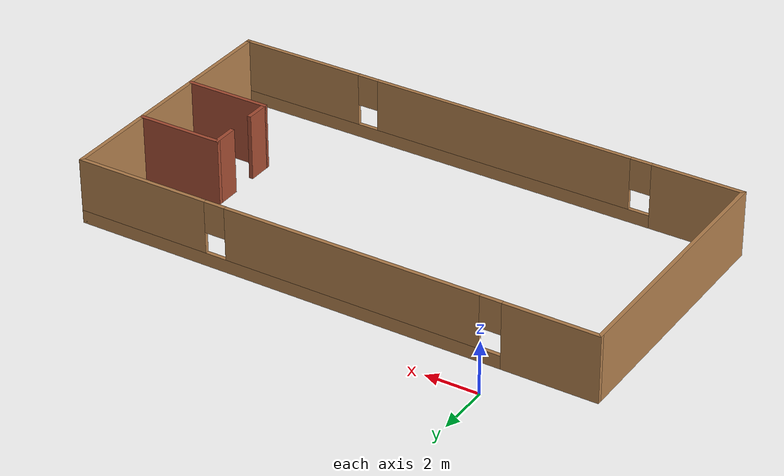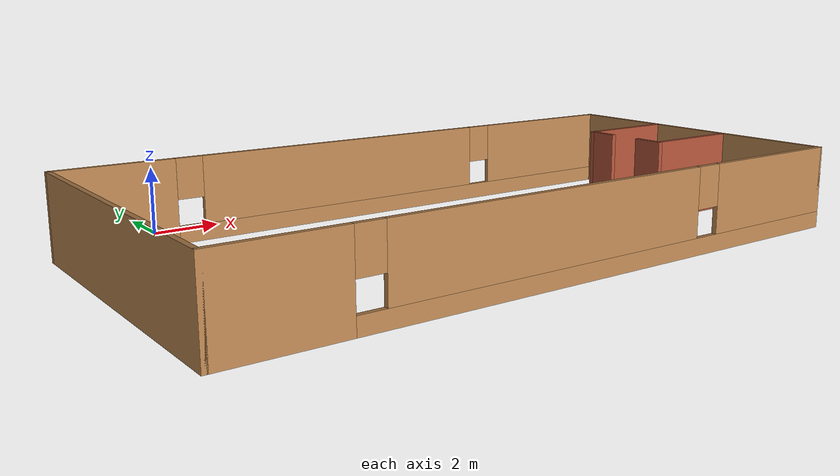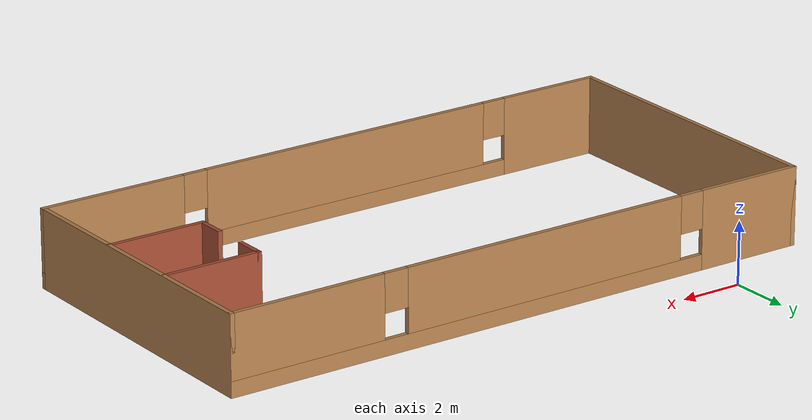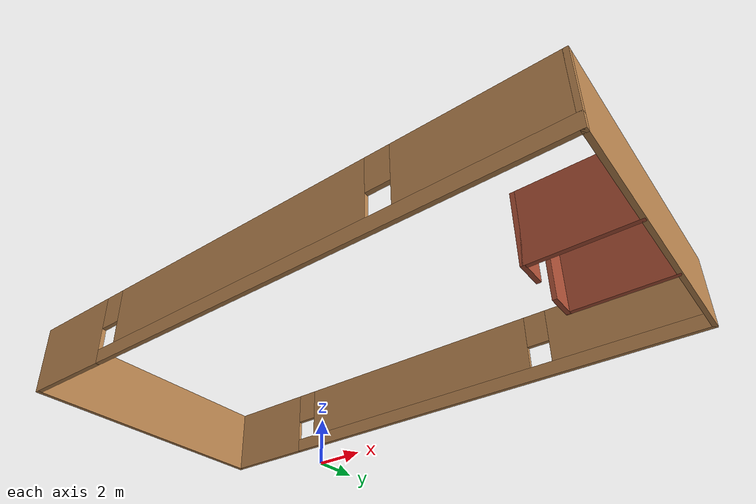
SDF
<?xml version='1.0'?>
<sdf version='1.7'>
  <model name='TestWorld'>
    <pose>6.615 -5.7575 0 0 -0 0</pose>
    <link name='Wall_0'>
      <collision name='Wall_0_Collision'>
        <geometry>
          <box>
            <size>10 0.15 2.5</size>
          </box>
        </geometry>
        <pose>0 0 1.25 0 -0 0</pose>
      </collision>
      <visual name='Wall_0_Visual'>
        <pose>0 0 1.25 0 -0 0</pose>
        <geometry>
          <box>
            <size>10 0.15 2.5</size>
          </box>
        </geometry>
        <material>
          <script>
            <uri>file://media/materials/scripts/gazebo.material</uri>
            <name>Gazebo/Wood</name>
          </script>
          <ambient>0.45098 0.823529 0.0862745 1</ambient>
        </material>
        <meta>
          <layer>0</layer>
        </meta>
      </visual>
      <pose>-9.925 -0.7575 0 0 -0 -1.5708</pose>
    </link>
    <link name='Wall_10'>
      <collision name='Wall_10_Collision'>
        <geometry>
          <box>
            <size>1 0.15 2.5</size>
          </box>
        </geometry>
        <pose>0 0 1.25 0 -0 0</pose>
      </collision>
      <visual name='Wall_10_Visual'>
        <pose>0 0 1.25 0 -0 0</pose>
        <geometry>
          <box>
            <size>1 0.15 2.5</size>
          </box>
        </geometry>
        <material>
          <script>
            <uri>file://media/materials/scripts/gazebo.material</uri>
            <name>Gazebo/Bricks</name>
          </script>
          <ambient>1 1 1 1</ambient>
        </material>
        <meta>
          <layer>0</layer>
        </meta>
      </visual>
      <pose>6.78158 0.344769 0 0 -0 -1.5708</pose>
    </link>
    <link name='Wall_13'>
      <collision name='Wall_13_Collision'>
        <geometry>
          <box>
            <size>1 0.15 2.5</size>
          </box>
        </geometry>
        <pose>0 0 1.25 0 -0 0</pose>
      </collision>
      <visual name='Wall_13_Visual'>
        <pose>0 0 1.25 0 -0 0</pose>
        <geometry>
          <box>
            <size>1 0.15 2.5</size>
          </box>
        </geometry>
        <material>
          <script>
            <uri>file://media/materials/scripts/gazebo.material</uri>
            <name>Gazebo/Bricks</name>
          </script>
          <ambient>1 1 1 1</ambient>
        </material>
        <meta>
          <layer>0</layer>
        </meta>
      </visual>
      <pose>6.79418 -1.66539 0 0 -0 -1.5708</pose>
    </link>
    <link name='Wall_14'>
      <collision name='Wall_14_Collision'>
        <geometry>
          <box>
            <size>3.25 0.15 2.5</size>
          </box>
        </geometry>
        <pose>0 0 1.25 0 -0 0</pose>
      </collision>
      <visual name='Wall_14_Visual'>
        <pose>0 0 1.25 0 -0 0</pose>
        <geometry>
          <box>
            <size>3.25 0.15 2.5</size>
          </box>
        </geometry>
        <material>
          <script>
            <uri>file://media/materials/scripts/gazebo.material</uri>
            <name>Gazebo/Bricks</name>
          </script>
          <ambient>1 1 1 1</ambient>
        </material>
        <meta>
          <layer>0</layer>
        </meta>
      </visual>
      <pose>8.34418 -2.09039 0 0 -0 0</pose>
    </link>
    <link name='Wall_2'>
      <pose>-1e-06 4.1675 0 0 -0 0</pose>
      <visual name='Wall_2_Visual_0'>
        <pose>-8.23506 0 1.25 0 -0 0</pose>
        <geometry>
          <box>
            <size>3.52988 0.15 2.5</size>
          </box>
        </geometry>
        <material>
          <script>
            <uri>file://media/materials/scripts/gazebo.material</uri>
            <name>Gazebo/Wood</name>
          </script>
          <ambient>0.45098 0.823529 0.0862745 1</ambient>
        </material>
        <meta>
          <layer>0</layer>
        </meta>
      </visual>
      <collision name='Wall_2_Collision_0'>
        <geometry>
          <box>
            <size>3.52988 0.15 2.5</size>
          </box>
        </geometry>
        <pose>-8.23506 0 1.25 0 -0 0</pose>
      </collision>
      <visual name='Wall_2_Visual_1'>
        <pose>1.76494 0 0.25 0 -0 0</pose>
        <geometry>
          <box>
            <size>16.4701 0.15 0.5</size>
          </box>
        </geometry>
        <material>
          <script>
            <uri>file://media/materials/scripts/gazebo.material</uri>
            <name>Gazebo/Wood</name>
          </script>
          <ambient>0.45098 0.823529 0.0862745 1</ambient>
        </material>
        <meta>
          <layer>0</layer>
        </meta>
      </visual>
      <collision name='Wall_2_Collision_1'>
        <geometry>
          <box>
            <size>16.4701 0.15 0.5</size>
          </box>
        </geometry>
        <pose>1.76494 0 0.25 0 -0 0</pose>
      </collision>
      <visual name='Wall_2_Visual_2'>
        <pose>-0.805034 0 1.5 0 -0 0</pose>
        <geometry>
          <box>
            <size>9.73018 0.15 2</size>
          </box>
        </geometry>
        <material>
          <script>
            <uri>file://media/materials/scripts/gazebo.material</uri>
            <name>Gazebo/Wood</name>
          </script>
          <ambient>0.45098 0.823529 0.0862745 1</ambient>
        </material>
        <meta>
          <layer>0</layer>
        </meta>
      </visual>
      <collision name='Wall_2_Collision_2'>
        <geometry>
          <box>
            <size>9.73018 0.15 2</size>
          </box>
        </geometry>
        <pose>-0.805034 0 1.5 0 -0 0</pose>
      </collision>
      <visual name='Wall_2_Visual_3'>
        <pose>7.43003 0 1.5 0 -0 0</pose>
        <geometry>
          <box>
            <size>5.13995 0.15 2</size>
          </box>
        </geometry>
        <material>
          <script>
            <uri>file://media/materials/scripts/gazebo.material</uri>
            <name>Gazebo/Wood</name>
          </script>
          <ambient>0.45098 0.823529 0.0862745 1</ambient>
        </material>
        <meta>
          <layer>0</layer>
        </meta>
      </visual>
      <collision name='Wall_2_Collision_3'>
        <geometry>
          <box>
            <size>5.13995 0.15 2</size>
          </box>
        </geometry>
        <pose>7.43003 0 1.5 0 -0 0</pose>
      </collision>
      <visual name='Wall_2_Visual_4'>
        <pose>-6.07012 0 1.9 0 -0 0</pose>
        <geometry>
          <box>
            <size>0.8 0.15 1.2</size>
          </box>
        </geometry>
        <material>
          <script>
            <uri>file://media/materials/scripts/gazebo.material</uri>
            <name>Gazebo/Wood</name>
          </script>
          <ambient>0.45098 0.823529 0.0862745 1</ambient>
        </material>
        <meta>
          <layer>0</layer>
        </meta>
      </visual>
      <collision name='Wall_2_Collision_4'>
        <geometry>
          <box>
            <size>0.8 0.15 1.2</size>
          </box>
        </geometry>
        <pose>-6.07012 0 1.9 0 -0 0</pose>
      </collision>
      <visual name='Wall_2_Visual_5'>
        <pose>4.46005 0 1.9 0 -0 0</pose>
        <geometry>
          <box>
            <size>0.8 0.15 1.2</size>
          </box>
        </geometry>
        <material>
          <script>
            <uri>file://media/materials/scripts/gazebo.material</uri>
            <name>Gazebo/Wood</name>
          </script>
          <ambient>0.45098 0.823529 0.0862745 1</ambient>
        </material>
        <meta>
          <layer>0</layer>
        </meta>
      </visual>
      <collision name='Wall_2_Collision_5'>
        <geometry>
          <box>
            <size>0.8 0.15 1.2</size>
          </box>
        </geometry>
        <pose>4.46005 0 1.9 0 -0 0</pose>
      </collision>
    </link>
    <link name='Wall_5'>
      <collision name='Wall_5_Collision'>
        <geometry>
          <box>
            <size>10 0.15 2.5</size>
          </box>
        </geometry>
        <pose>0 0 1.25 0 -0 0</pose>
      </collision>
      <visual name='Wall_5_Visual'>
        <pose>0 0 1.25 0 -0 0</pose>
        <geometry>
          <box>
            <size>10 0.15 2.5</size>
          </box>
        </geometry>
        <material>
          <script>
            <uri>file://media/materials/scripts/gazebo.material</uri>
            <name>Gazebo/Wood</name>
          </script>
          <ambient>0.45098 0.823529 0.0862745 1</ambient>
        </material>
        <meta>
          <layer>0</layer>
        </meta>
      </visual>
      <pose>9.925 -0.7575 0 0 -0 -1.5708</pose>
    </link>
    <link name='Wall_7'>
      <pose>-1e-06 -5.6825 0 0 -0 0</pose>
      <visual name='Wall_7_Visual_0'>
        <pose>-8.26819 0 1.25 0 -0 0</pose>
        <geometry>
          <box>
            <size>3.46361 0.15 2.5</size>
          </box>
        </geometry>
        <material>
          <script>
            <uri>file://media/materials/scripts/gazebo.material</uri>
            <name>Gazebo/Wood</name>
          </script>
          <ambient>0.45098 0.823529 0.0862745 1</ambient>
        </material>
        <meta>
          <layer>0</layer>
        </meta>
      </visual>
      <collision name='Wall_7_Collision_0'>
        <geometry>
          <box>
            <size>3.46361 0.15 2.5</size>
          </box>
        </geometry>
        <pose>-8.26819 0 1.25 0 -0 0</pose>
      </collision>
      <visual name='Wall_7_Visual_1'>
        <pose>1.73181 0 0.25 0 -0 0</pose>
        <geometry>
          <box>
            <size>16.5364 0.15 0.5</size>
          </box>
        </geometry>
        <material>
          <script>
            <uri>file://media/materials/scripts/gazebo.material</uri>
            <name>Gazebo/Wood</name>
          </script>
          <ambient>0.45098 0.823529 0.0862745 1</ambient>
        </material>
        <meta>
          <layer>0</layer>
        </meta>
      </visual>
      <collision name='Wall_7_Collision_1'>
        <geometry>
          <box>
            <size>16.5364 0.15 0.5</size>
          </box>
        </geometry>
        <pose>1.73181 0 0.25 0 -0 0</pose>
      </collision>
      <visual name='Wall_7_Visual_2'>
        <pose>-0.684557 0 1.5 0 -0 0</pose>
        <geometry>
          <box>
            <size>10.1037 0.15 2</size>
          </box>
        </geometry>
        <material>
          <script>
            <uri>file://media/materials/scripts/gazebo.material</uri>
            <name>Gazebo/Wood</name>
          </script>
          <ambient>0.45098 0.823529 0.0862745 1</ambient>
        </material>
        <meta>
          <layer>0</layer>
        </meta>
      </visual>
      <collision name='Wall_7_Collision_2'>
        <geometry>
          <box>
            <size>10.1037 0.15 2</size>
          </box>
        </geometry>
        <pose>-0.684557 0 1.5 0 -0 0</pose>
      </collision>
      <visual name='Wall_7_Visual_3'>
        <pose>7.58364 0 1.5 0 -0 0</pose>
        <geometry>
          <box>
            <size>4.83273 0.15 2</size>
          </box>
        </geometry>
        <material>
          <script>
            <uri>file://media/materials/scripts/gazebo.material</uri>
            <name>Gazebo/Wood</name>
          </script>
          <ambient>0.45098 0.823529 0.0862745 1</ambient>
        </material>
        <meta>
          <layer>0</layer>
        </meta>
      </visual>
      <collision name='Wall_7_Collision_3'>
        <geometry>
          <box>
            <size>4.83273 0.15 2</size>
          </box>
        </geometry>
        <pose>7.58364 0 1.5 0 -0 0</pose>
      </collision>
      <visual name='Wall_7_Visual_4'>
        <pose>-6.13639 0 1.9 0 -0 0</pose>
        <geometry>
          <box>
            <size>0.8 0.15 1.2</size>
          </box>
        </geometry>
        <material>
          <script>
            <uri>file://media/materials/scripts/gazebo.material</uri>
            <name>Gazebo/Wood</name>
          </script>
          <ambient>0.45098 0.823529 0.0862745 1</ambient>
        </material>
        <meta>
          <layer>0</layer>
        </meta>
      </visual>
      <collision name='Wall_7_Collision_4'>
        <geometry>
          <box>
            <size>0.8 0.15 1.2</size>
          </box>
        </geometry>
        <pose>-6.13639 0 1.9 0 -0 0</pose>
      </collision>
      <visual name='Wall_7_Visual_5'>
        <pose>4.76727 0 1.9 0 -0 0</pose>
        <geometry>
          <box>
            <size>0.8 0.15 1.2</size>
          </box>
        </geometry>
        <material>
          <script>
            <uri>file://media/materials/scripts/gazebo.material</uri>
            <name>Gazebo/Wood</name>
          </script>
          <ambient>0.45098 0.823529 0.0862745 1</ambient>
        </material>
        <meta>
          <layer>0</layer>
        </meta>
      </visual>
      <collision name='Wall_7_Collision_5'>
        <geometry>
          <box>
            <size>0.8 0.15 1.2</size>
          </box>
        </geometry>
        <pose>4.76727 0 1.9 0 -0 0</pose>
      </collision>
    </link>
    <link name='Wall_9'>
      <collision name='Wall_9_Collision'>
        <geometry>
          <box>
            <size>3.25 0.15 2.5</size>
          </box>
        </geometry>
        <pose>0 0 1.25 0 -0 0</pose>
      </collision>
      <visual name='Wall_9_Visual'>
        <pose>0 0 1.25 0 -0 0</pose>
        <geometry>
          <box>
            <size>3.25 0.15 2.5</size>
          </box>
        </geometry>
        <material>
          <script>
            <uri>file://media/materials/scripts/gazebo.material</uri>
            <name>Gazebo/Bricks</name>
          </script>
          <ambient>1 1 1 1</ambient>
        </material>
        <meta>
          <layer>0</layer>
        </meta>
      </visual>
      <pose>8.33158 0.769769 0 0 -0 3.14159</pose>
    </link>
    <static>1</static>
  </model>
</sdf>
